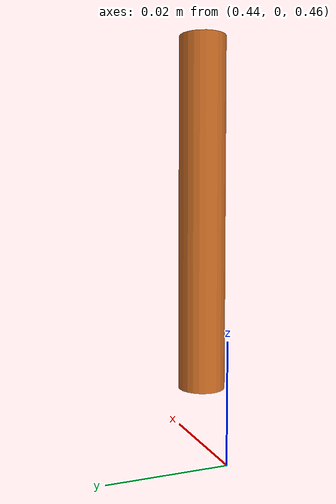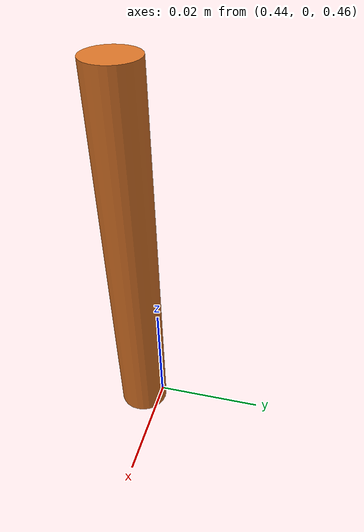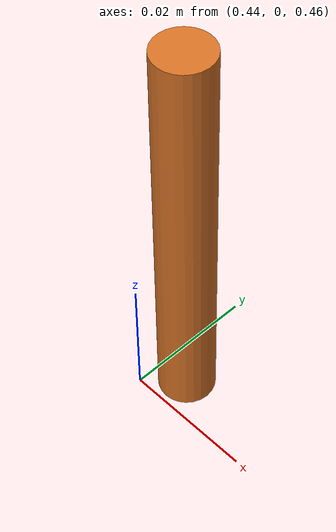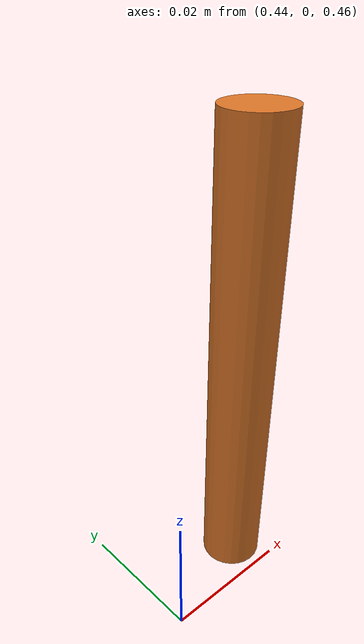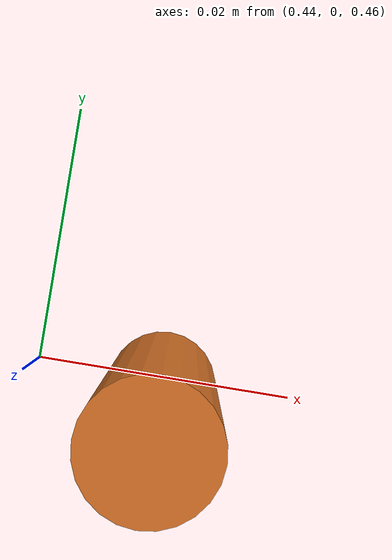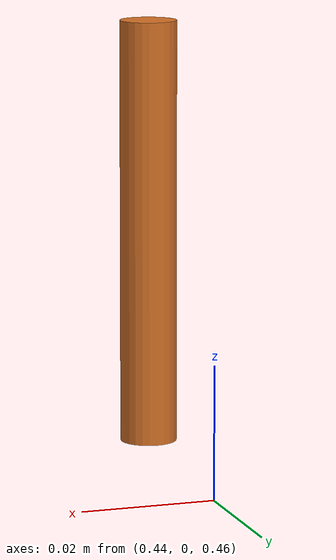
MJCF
<mujoco model="peg">
  <asset>
    <material name="peg_material" rgba="0.85 0.45 0.15 1" specular="0.3" shininess="0.4"/>
  </asset>

  <default>
    <default class="peg_default">
      <geom type="cylinder" size="0.004 0.030" material="peg_material"
            friction="1.0 0.005 0.0001" condim="4"
            solref="0.005 1" solimp="0.95 0.99 0.001"/>
    </default>
  </default>

  <worldbody>
    <body name="peg" pos="0.45 0 0.5">
      <freejoint name="peg_joint"/>
      <inertial pos="0 0 0" mass="0.030" diaginertia="9.12e-6 9.12e-6 2.4e-7"/>
      <geom name="peg_geom" class="peg_default"/>
      <site name="peg_tip" pos="0 0 0.030" size="0.002" rgba="0 1 1 0.4" group="3"/>
    </body>
  </worldbody>
</mujoco>
